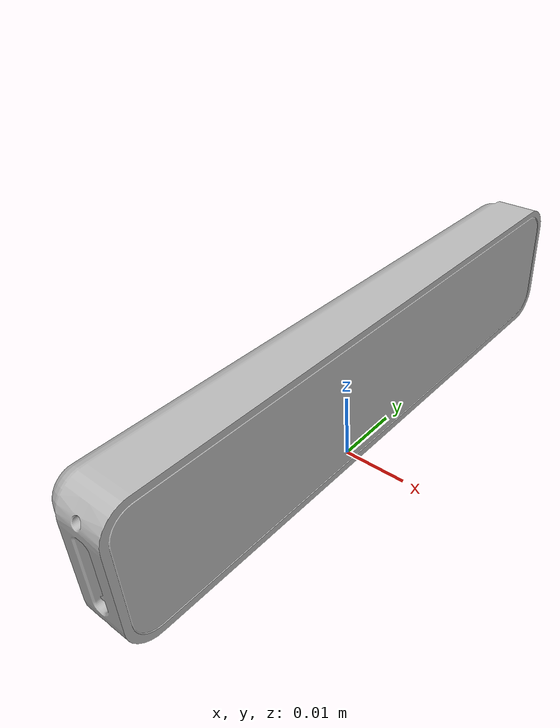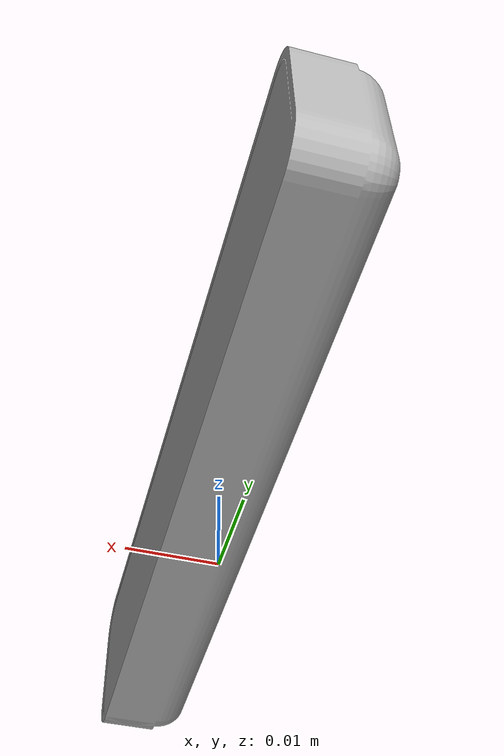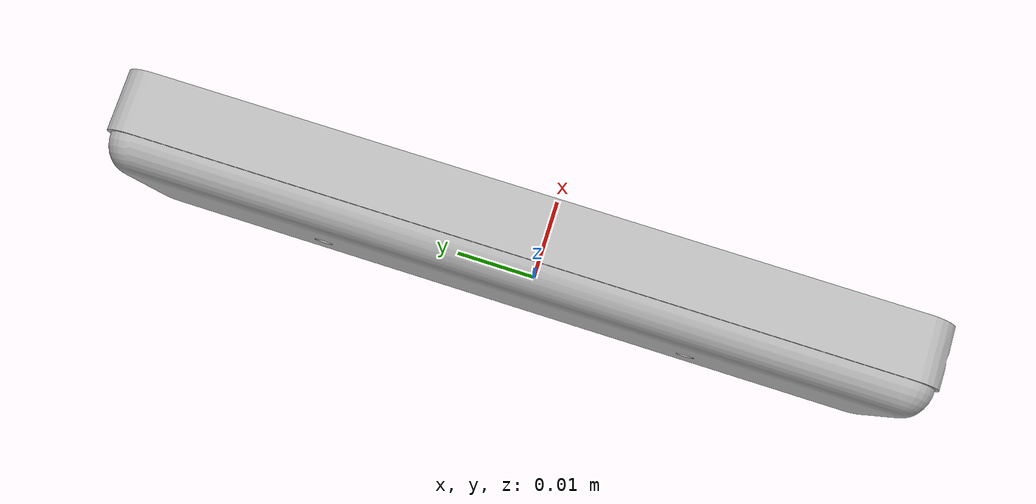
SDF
<?xml version="1.0"?>
<sdf version='1.6'>
  <model name='T265'>
    <plugin name='TrackingPlugin' filename='libRealsenseT265Plugin.so'></plugin>
    <pose frame="">0 0 0.015 0 0 0</pose>
    <link name="link">
      <inertial>
        <mass>0.07</mass>
        <inertia>
          <ixx>0.0000508</ixx>
          <iyy>0.00000729167</iyy>
          <izz>0.0000508</izz>
        </inertia>
        <pose frame=''>0 0 0 0 -0 0</pose>
      </inertial>
      <self_collide>0</self_collide>
      <enable_wind>0</enable_wind>
      <kinematic>0</kinematic>
      <gravity>1</gravity>
      <visual name="visual">
        <geometry>
          <mesh>
            <uri>model://t265/meshes/t265.dae</uri>
          </mesh>
        </geometry>
        <pose>0 0 0 0 0 1.57</pose>
      </visual>
      <sensor name="camera" type="camera">
        <pose frame="">0 0.03 0.00 0 0 0</pose>
        <camera name="__default__">
          <always_on>1</always_on>
          <update_rate>30</update_rate>
        </camera>
        <visualize>1</visualize>
      </sensor>
    </link>
  </model>
</sdf>
